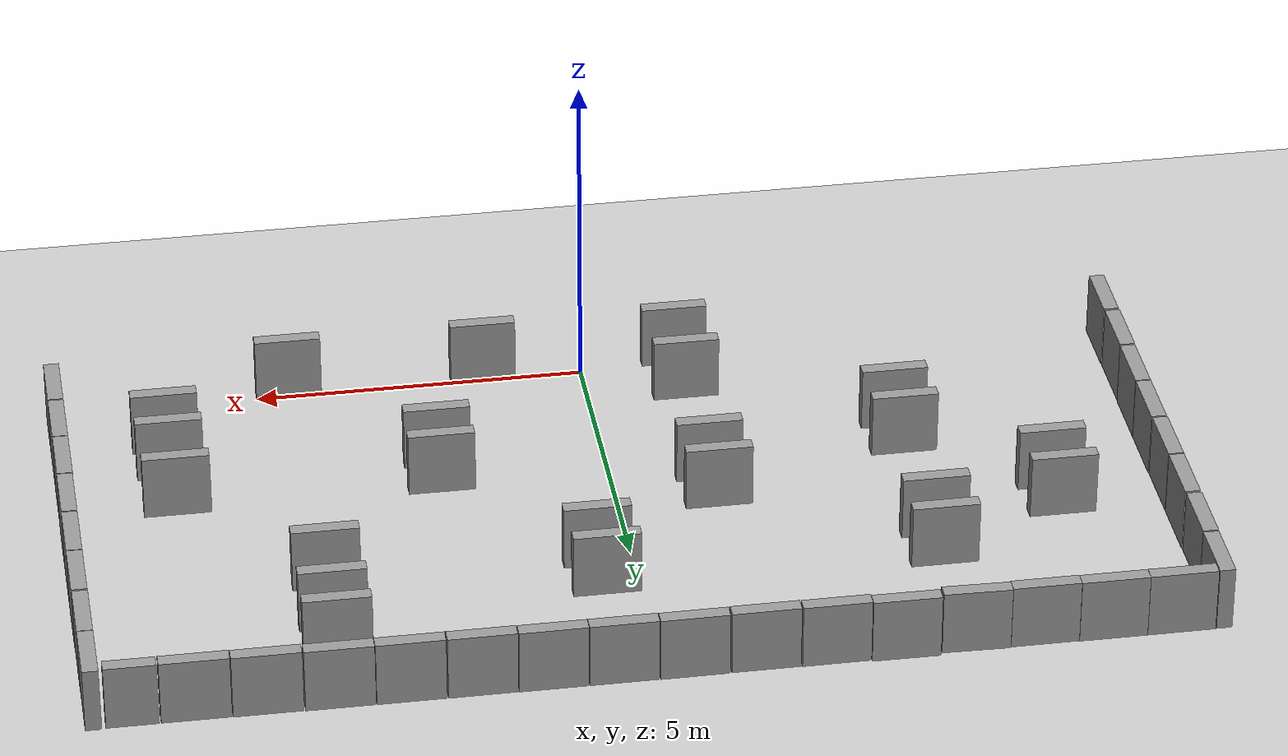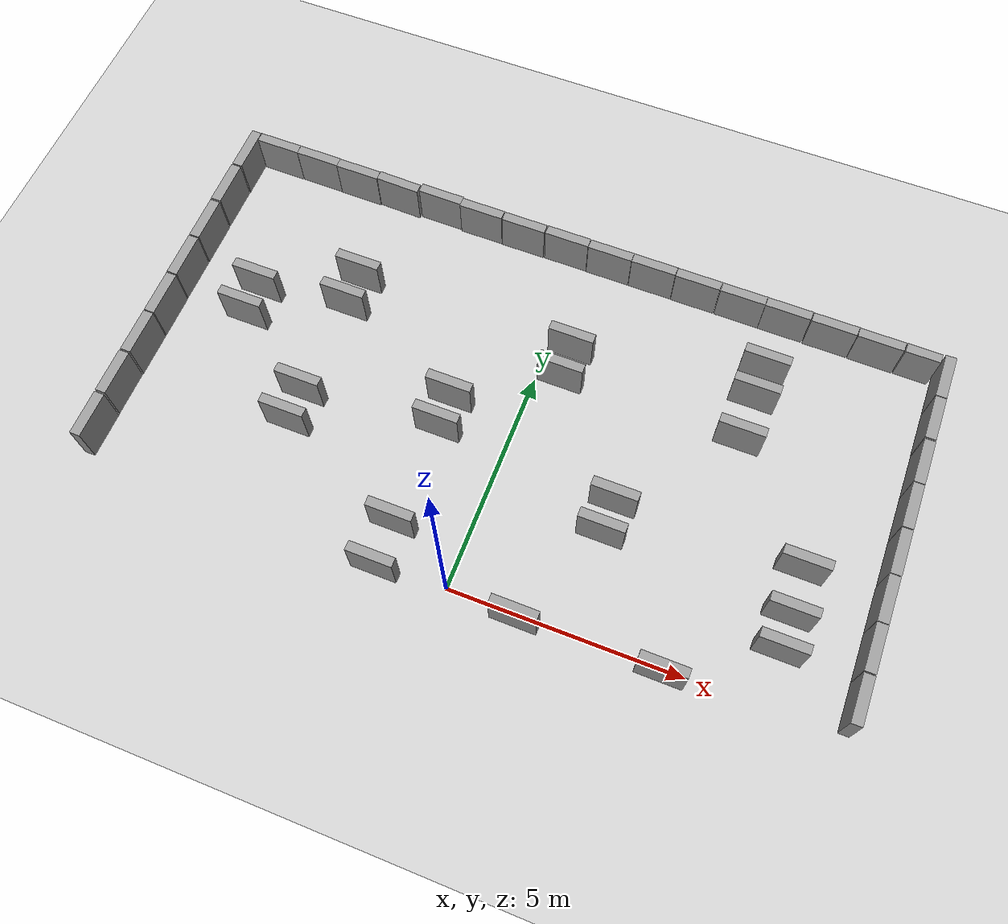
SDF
<sdf version="1.6">
 <world name="default">
  <model name="ground_plane">
   <static>1</static>
   <static>1</static>
   <link name="link">
    <collision name="collision">
     <geometry><plane><normal>0 0 1</normal><size>100 100</size></plane></geometry>
     <surface><friction><ode><mu>100</mu><mu2>50</mu2></ode></friction></surface>
    </collision>
    <visual name="visual">
     <cast_shadows>0</cast_shadows>
     <geometry><plane><normal>0 0 1</normal><size>100 100</size></plane></geometry>
     <material>
      <script><uri>file://media/materials/scripts/gazebo.material</uri><name>Gazebo/Grey</name></script>
     </material>
    </visual>
   </link>
  </model>
  <model name="unit_box_clone">
   <pose>-7.49845 8.12011 0.499999 1e-06 -2e-06 0.000156</pose>
   <link name="link">
    <inertial>
     <mass>1</mass>
     <inertia>
      <ixx>0.166667</ixx>
      <ixy>0</ixy>
      <ixz>0</ixz>
      <iyy>0.166667</iyy>
      <iyz>0</iyz>
      <izz>0.166667</izz>
     </inertia>
    </inertial>
    <collision name="collision"><geometry><box><size>1 0.210541 1</size></box></geometry></collision>
    <visual name="visual">
     <geometry><box><size>1 0.210541 1</size></box></geometry>
     <material>
      <script><name>Gazebo/Grey</name><uri>file://media/materials/scripts/gazebo.material</uri></script>
     </material>
    </visual>
   </link>
  </model>
  <model name="unit_box_clone_0">
   <pose>-6.4973 8.11973 0.500001 -8e-06 -0 -0.002301</pose>
   <link name="link">
    <inertial>
     <mass>1</mass>
     <inertia>
      <ixx>0.166667</ixx>
      <ixy>0</ixy>
      <ixz>0</ixz>
      <iyy>0.166667</iyy>
      <iyz>0</iyz>
      <izz>0.166667</izz>
     </inertia>
    </inertial>
    <collision name="collision"><geometry><box><size>1 0.210541 1</size></box></geometry></collision>
    <visual name="visual">
     <geometry><box><size>1 0.210541 1</size></box></geometry>
     <material>
      <script><name>Gazebo/Grey</name><uri>file://media/materials/scripts/gazebo.material</uri></script>
     </material>
    </visual>
   </link>
  </model>
  <model name="unit_box_clone_1">
   <pose>-5.49732 8.10848 0.499931 -0 -0 -0.002301</pose>
   <link name="link">
    <inertial>
     <mass>1</mass>
     <inertia>
      <ixx>0.166667</ixx>
      <ixy>0</ixy>
      <ixz>0</ixz>
      <iyy>0.166667</iyy>
      <iyz>0</iyz>
      <izz>0.166667</izz>
     </inertia>
    </inertial>
    <collision name="collision"><geometry><box><size>1 0.210541 1</size></box></geometry></collision>
    <visual name="visual">
     <geometry><box><size>1 0.210541 1</size></box></geometry>
     <material>
      <script><name>Gazebo/Grey</name><uri>file://media/materials/scripts/gazebo.material</uri></script>
     </material>
    </visual>
   </link>
  </model>
  <model name="unit_box_clone_2">
   <pose>-4.49485 8.11083 0.499999 1e-06 -2e-06 -0.026824</pose>
   <link name="link">
    <inertial>
     <mass>1</mass>
     <inertia>
      <ixx>0.166667</ixx>
      <ixy>0</ixy>
      <ixz>0</ixz>
      <iyy>0.166667</iyy>
      <iyz>0</iyz>
      <izz>0.166667</izz>
     </inertia>
    </inertial>
    <collision name="collision"><geometry><box><size>1 0.210541 1</size></box></geometry></collision>
    <visual name="visual">
     <geometry><box><size>1 0.210541 1</size></box></geometry>
     <material>
      <script><name>Gazebo/Grey</name><uri>file://media/materials/scripts/gazebo.material</uri></script>
     </material>
    </visual>
   </link>
  </model>
  <model name="unit_box_clone_3">
   <pose>-3.46835 8.14999 0.5 -0 -0 -0.007791</pose>
   <link name="link">
    <inertial>
     <mass>1</mass>
     <inertia>
      <ixx>0.166667</ixx>
      <ixy>0</ixy>
      <ixz>0</ixz>
      <iyy>0.166667</iyy>
      <iyz>0</iyz>
      <izz>0.166667</izz>
     </inertia>
    </inertial>
    <collision name="collision"><geometry><box><size>1 0.210541 1</size></box></geometry></collision>
    <visual name="visual">
     <geometry><box><size>1 0.210541 1</size></box></geometry>
     <material>
      <script><name>Gazebo/Grey</name><uri>file://media/materials/scripts/gazebo.material</uri></script>
     </material>
    </visual>
   </link>
  </model>
  <model name="unit_box_clone_4">
   <pose>-2.46316 8.1188 0.499999 1e-06 -2e-06 0.000156</pose>
   <link name="link">
    <inertial>
     <mass>1</mass>
     <inertia>
      <ixx>0.166667</ixx>
      <ixy>0</ixy>
      <ixz>0</ixz>
      <iyy>0.166667</iyy>
      <iyz>0</iyz>
      <izz>0.166667</izz>
     </inertia>
    </inertial>
    <collision name="collision"><geometry><box><size>1 0.210541 1</size></box></geometry></collision>
    <visual name="visual">
     <geometry><box><size>1 0.210541 1</size></box></geometry>
     <material>
      <script><name>Gazebo/Grey</name><uri>file://media/materials/scripts/gazebo.material</uri></script>
     </material>
    </visual>
   </link>
  </model>
  <model name="unit_box_clone_5">
   <pose>-1.44425 8.11214 0.499999 1e-06 -2e-06 0.000156</pose>
   <link name="link">
    <inertial>
     <mass>1</mass>
     <inertia>
      <ixx>0.166667</ixx>
      <ixy>0</ixy>
      <ixz>0</ixz>
      <iyy>0.166667</iyy>
      <iyz>0</iyz>
      <izz>0.166667</izz>
     </inertia>
    </inertial>
    <collision name="collision"><geometry><box><size>1 0.210541 1</size></box></geometry></collision>
    <visual name="visual">
     <geometry><box><size>1 0.210541 1</size></box></geometry>
     <material>
      <script><name>Gazebo/Grey</name><uri>file://media/materials/scripts/gazebo.material</uri></script>
     </material>
    </visual>
   </link>
  </model>
  <model name="unit_box_clone_6">
   <pose>-0.418685 8.11879 0.499999 1e-06 -2e-06 0.000156</pose>
   <link name="link">
    <inertial>
     <mass>1</mass>
     <inertia>
      <ixx>0.166667</ixx>
      <ixy>0</ixy>
      <ixz>0</ixz>
      <iyy>0.166667</iyy>
      <iyz>0</iyz>
      <izz>0.166667</izz>
     </inertia>
    </inertial>
    <collision name="collision"><geometry><box><size>1 0.210541 1</size></box></geometry></collision>
    <visual name="visual">
     <geometry><box><size>1 0.210541 1</size></box></geometry>
     <material>
      <script><name>Gazebo/Grey</name><uri>file://media/materials/scripts/gazebo.material</uri></script>
     </material>
    </visual>
   </link>
  </model>
  <model name="unit_box_clone_7">
   <pose>0.592834 8.11166 0.499999 1e-06 -2e-06 0.000156</pose>
   <link name="link">
    <inertial>
     <mass>1</mass>
     <inertia>
      <ixx>0.166667</ixx>
      <ixy>0</ixy>
      <ixz>0</ixz>
      <iyy>0.166667</iyy>
      <iyz>0</iyz>
      <izz>0.166667</izz>
     </inertia>
    </inertial>
    <collision name="collision"><geometry><box><size>1 0.210541 1</size></box></geometry></collision>
    <visual name="visual">
     <geometry><box><size>1 0.210541 1</size></box></geometry>
     <material>
      <script><name>Gazebo/Grey</name><uri>file://media/materials/scripts/gazebo.material</uri></script>
     </material>
    </visual>
   </link>
  </model>
  <model name="unit_box_clone_8">
   <pose>1.60043 8.11017 0.499999 1e-06 -2e-06 0.000156</pose>
   <link name="link">
    <inertial>
     <mass>1</mass>
     <inertia>
      <ixx>0.166667</ixx>
      <ixy>0</ixy>
      <ixz>0</ixz>
      <iyy>0.166667</iyy>
      <iyz>0</iyz>
      <izz>0.166667</izz>
     </inertia>
    </inertial>
    <collision name="collision"><geometry><box><size>1 0.210541 1</size></box></geometry></collision>
    <visual name="visual">
     <geometry><box><size>1 0.210541 1</size></box></geometry>
     <material>
      <script><name>Gazebo/Grey</name><uri>file://media/materials/scripts/gazebo.material</uri></script>
     </material>
    </visual>
   </link>
  </model>
  <model name="unit_box_clone_9">
   <pose>2.60987 8.10298 0.499999 1e-06 -2e-06 0.000156</pose>
   <link name="link">
    <inertial>
     <mass>1</mass>
     <inertia>
      <ixx>0.166667</ixx>
      <ixy>0</ixy>
      <ixz>0</ixz>
      <iyy>0.166667</iyy>
      <iyz>0</iyz>
      <izz>0.166667</izz>
     </inertia>
    </inertial>
    <collision name="collision"><geometry><box><size>1 0.210541 1</size></box></geometry></collision>
    <visual name="visual">
     <geometry><box><size>1 0.210541 1</size></box></geometry>
     <material>
      <script><name>Gazebo/Grey</name><uri>file://media/materials/scripts/gazebo.material</uri></script>
     </material>
    </visual>
   </link>
  </model>
  <model name="unit_box_clone_10">
   <pose>3.62649 8.09939 0.499999 1e-06 -2e-06 0.000156</pose>
   <link name="link">
    <inertial>
     <mass>1</mass>
     <inertia>
      <ixx>0.166667</ixx>
      <ixy>0</ixy>
      <ixz>0</ixz>
      <iyy>0.166667</iyy>
      <iyz>0</iyz>
      <izz>0.166667</izz>
     </inertia>
    </inertial>
    <collision name="collision"><geometry><box><size>1 0.210541 1</size></box></geometry></collision>
    <visual name="visual">
     <geometry><box><size>1 0.210541 1</size></box></geometry>
     <material>
      <script><name>Gazebo/Grey</name><uri>file://media/materials/scripts/gazebo.material</uri></script>
     </material>
    </visual>
   </link>
  </model>
  <model name="unit_box_clone_11">
   <pose>4.63311 8.09523 0.5 0 -0 -0.003214</pose>
   <link name="link">
    <inertial>
     <mass>1</mass>
     <inertia>
      <ixx>0.166667</ixx>
      <ixy>0</ixy>
      <ixz>0</ixz>
      <iyy>0.166667</iyy>
      <iyz>0</iyz>
      <izz>0.166667</izz>
     </inertia>
    </inertial>
    <collision name="collision"><geometry><box><size>1 0.210541 1</size></box></geometry></collision>
    <visual name="visual">
     <geometry><box><size>1 0.210541 1</size></box></geometry>
     <material>
      <script><name>Gazebo/Grey</name><uri>file://media/materials/scripts/gazebo.material</uri></script>
     </material>
    </visual>
   </link>
  </model>
  <model name="unit_box_0_clone_0">
   <pose>8.11522 6.68459 0.5 0 0 -0.00024</pose>
   <link name="link">
    <inertial>
     <mass>1</mass>
     <inertia>
      <ixx>0.166667</ixx>
      <ixy>0</ixy>
      <ixz>0</ixz>
      <iyy>0.166667</iyy>
      <iyz>0</iyz>
      <izz>0.166667</izz>
     </inertia>
    </inertial>
    <collision name="collision"><geometry><box><size>0.230819 1 1</size></box></geometry></collision>
    <visual name="visual">
     <geometry><box><size>0.230819 1 1</size></box></geometry>
     <material>
      <script><name>Gazebo/Grey</name><uri>file://media/materials/scripts/gazebo.material</uri></script>
     </material>
    </visual>
   </link>
  </model>
  <model name="unit_box_0_clone_1">
   <pose>8.11915 5.6517 0.5 1e-06 1e-06 0.000156</pose>
   <link name="link">
    <inertial>
     <mass>1</mass>
     <inertia>
      <ixx>0.166667</ixx>
      <ixy>0</ixy>
      <ixz>0</ixz>
      <iyy>0.166667</iyy>
      <iyz>0</iyz>
      <izz>0.166667</izz>
     </inertia>
    </inertial>
    <collision name="collision"><geometry><box><size>0.230819 1 1</size></box></geometry></collision>
    <visual name="visual">
     <geometry><box><size>0.230819 1 1</size></box></geometry>
     <material>
      <script><name>Gazebo/Grey</name><uri>file://media/materials/scripts/gazebo.material</uri></script>
     </material>
    </visual>
   </link>
  </model>
  <model name="unit_box_0_clone_2">
   <pose>8.11914 4.64016 0.5 1e-06 1e-06 0.00025</pose>
   <link name="link">
    <inertial>
     <mass>1</mass>
     <inertia>
      <ixx>0.166667</ixx>
      <ixy>0</ixy>
      <ixz>0</ixz>
      <iyy>0.166667</iyy>
      <iyz>0</iyz>
      <izz>0.166667</izz>
     </inertia>
    </inertial>
    <collision name="collision"><geometry><box><size>0.230819 1 1</size></box></geometry></collision>
    <visual name="visual">
     <geometry><box><size>0.230819 1 1</size></box></geometry>
     <material>
      <script><name>Gazebo/Grey</name><uri>file://media/materials/scripts/gazebo.material</uri></script>
     </material>
    </visual>
   </link>
  </model>
  <model name="unit_box_0_clone_3">
   <pose>8.11914 3.62227 0.5 1e-06 1e-06 0.000231</pose>
   <link name="link">
    <inertial>
     <mass>1</mass>
     <inertia>
      <ixx>0.166667</ixx>
      <ixy>0</ixy>
      <ixz>0</ixz>
      <iyy>0.166667</iyy>
      <iyz>0</iyz>
      <izz>0.166667</izz>
     </inertia>
    </inertial>
    <collision name="collision"><geometry><box><size>0.230819 1 1</size></box></geometry></collision>
    <visual name="visual">
     <geometry><box><size>0.230819 1 1</size></box></geometry>
     <material>
      <script><name>Gazebo/Grey</name><uri>file://media/materials/scripts/gazebo.material</uri></script>
     </material>
    </visual>
   </link>
  </model>
  <model name="unit_box_0_clone_4">
   <pose>8.11332 2.61062 0.5 1e-06 1e-06 -0.001006</pose>
   <link name="link">
    <inertial>
     <mass>1</mass>
     <inertia>
      <ixx>0.166667</ixx>
      <ixy>0</ixy>
      <ixz>0</ixz>
      <iyy>0.166667</iyy>
      <iyz>0</iyz>
      <izz>0.166667</izz>
     </inertia>
    </inertial>
    <collision name="collision"><geometry><box><size>0.230819 1 1</size></box></geometry></collision>
    <visual name="visual">
     <geometry><box><size>0.230819 1 1</size></box></geometry>
     <material>
      <script><name>Gazebo/Grey</name><uri>file://media/materials/scripts/gazebo.material</uri></script>
     </material>
    </visual>
   </link>
  </model>
  <model name="unit_box_0_clone_5">
   <pose>8.11277 1.59919 0.5 1e-06 1e-06 0.000231</pose>
   <link name="link">
    <inertial>
     <mass>1</mass>
     <inertia>
      <ixx>0.166667</ixx>
      <ixy>0</ixy>
      <ixz>0</ixz>
      <iyy>0.166667</iyy>
      <iyz>0</iyz>
      <izz>0.166667</izz>
     </inertia>
    </inertial>
    <collision name="collision"><geometry><box><size>0.230819 1 1</size></box></geometry></collision>
    <visual name="visual">
     <geometry><box><size>0.230819 1 1</size></box></geometry>
     <material>
      <script><name>Gazebo/Grey</name><uri>file://media/materials/scripts/gazebo.material</uri></script>
     </material>
    </visual>
   </link>
  </model>
  <model name="unit_box_0_clone_6">
   <pose>8.11277 0.574937 0.5 1e-06 1e-06 0.000231</pose>
   <link name="link">
    <inertial>
     <mass>1</mass>
     <inertia>
      <ixx>0.166667</ixx>
      <ixy>0</ixy>
      <ixz>0</ixz>
      <iyy>0.166667</iyy>
      <iyz>0</iyz>
      <izz>0.166667</izz>
     </inertia>
    </inertial>
    <collision name="collision"><geometry><box><size>0.230819 1 1</size></box></geometry></collision>
    <visual name="visual">
     <geometry><box><size>0.230819 1 1</size></box></geometry>
     <material>
      <script><name>Gazebo/Grey</name><uri>file://media/materials/scripts/gazebo.material</uri></script>
     </material>
    </visual>
   </link>
  </model>
  <model name="unit_box_0_clone_4_clone">
   <pose>-8.12647 7.71769 0.5 1e-06 1e-06 0.000231</pose>
   <link name="link">
    <inertial>
     <mass>1</mass>
     <inertia>
      <ixx>0.166667</ixx>
      <ixy>0</ixy>
      <ixz>0</ixz>
      <iyy>0.166667</iyy>
      <iyz>0</iyz>
      <izz>0.166667</izz>
     </inertia>
    </inertial>
    <collision name="collision"><geometry><box><size>0.230819 1 1</size></box></geometry></collision>
    <visual name="visual">
     <geometry><box><size>0.230819 1 1</size></box></geometry>
     <material>
      <script><name>Gazebo/Grey</name><uri>file://media/materials/scripts/gazebo.material</uri></script>
     </material>
    </visual>
   </link>
  </model>
  <model name="unit_box_0_clone_4_clone_0">
   <pose>-8.13281 6.68715 0.5 1e-06 1e-06 0.000231</pose>
   <link name="link">
    <inertial>
     <mass>1</mass>
     <inertia>
      <ixx>0.166667</ixx>
      <ixy>0</ixy>
      <ixz>0</ixz>
      <iyy>0.166667</iyy>
      <iyz>0</iyz>
      <izz>0.166667</izz>
     </inertia>
    </inertial>
    <collision name="collision"><geometry><box><size>0.230819 1 1</size></box></geometry></collision>
    <visual name="visual">
     <geometry><box><size>0.230819 1 1</size></box></geometry>
     <material>
      <script><name>Gazebo/Grey</name><uri>file://media/materials/scripts/gazebo.material</uri></script>
     </material>
    </visual>
   </link>
  </model>
  <model name="unit_box_0_clone_4_clone_1">
   <pose>-8.12606 5.64722 0.5 1e-06 1e-06 0.000231</pose>
   <link name="link">
    <inertial>
     <mass>1</mass>
     <inertia>
      <ixx>0.166667</ixx>
      <ixy>0</ixy>
      <ixz>0</ixz>
      <iyy>0.166667</iyy>
      <iyz>0</iyz>
      <izz>0.166667</izz>
     </inertia>
    </inertial>
    <collision name="collision"><geometry><box><size>0.230819 1 1</size></box></geometry></collision>
    <visual name="visual">
     <geometry><box><size>0.230819 1 1</size></box></geometry>
     <material>
      <script><name>Gazebo/Grey</name><uri>file://media/materials/scripts/gazebo.material</uri></script>
     </material>
    </visual>
   </link>
  </model>
  <model name="unit_box_0_clone_4_clone_2">
   <pose>-8.12607 4.6208 0.5 1e-06 1e-06 0.000231</pose>
   <link name="link">
    <inertial>
     <mass>1</mass>
     <inertia>
      <ixx>0.166667</ixx>
      <ixy>0</ixy>
      <ixz>0</ixz>
      <iyy>0.166667</iyy>
      <iyz>0</iyz>
      <izz>0.166667</izz>
     </inertia>
    </inertial>
    <collision name="collision"><geometry><box><size>0.230819 1 1</size></box></geometry></collision>
    <visual name="visual">
     <geometry><box><size>0.230819 1 1</size></box></geometry>
     <material>
      <script><name>Gazebo/Grey</name><uri>file://media/materials/scripts/gazebo.material</uri></script>
     </material>
    </visual>
   </link>
  </model>
  <model name="unit_box_0_clone_4_clone_3">
   <pose>-8.11932 3.59438 0.5 1e-06 1e-06 0.000231</pose>
   <link name="link">
    <inertial>
     <mass>1</mass>
     <inertia>
      <ixx>0.166667</ixx>
      <ixy>0</ixy>
      <ixz>0</ixz>
      <iyy>0.166667</iyy>
      <iyz>0</iyz>
      <izz>0.166667</izz>
     </inertia>
    </inertial>
    <collision name="collision"><geometry><box><size>0.230819 1 1</size></box></geometry></collision>
    <visual name="visual">
     <geometry><box><size>0.230819 1 1</size></box></geometry>
     <material>
      <script><name>Gazebo/Grey</name><uri>file://media/materials/scripts/gazebo.material</uri></script>
     </material>
    </visual>
   </link>
  </model>
  <model name="unit_box_0_clone_4_clone_4">
   <pose>-8.11932 2.57472 0.5 1e-06 1e-06 0.000231</pose>
   <link name="link">
    <inertial>
     <mass>1</mass>
     <inertia>
      <ixx>0.166667</ixx>
      <ixy>0</ixy>
      <ixz>0</ixz>
      <iyy>0.166667</iyy>
      <iyz>0</iyz>
      <izz>0.166667</izz>
     </inertia>
    </inertial>
    <collision name="collision"><geometry><box><size>0.230819 1 1</size></box></geometry></collision>
    <visual name="visual">
     <geometry><box><size>0.230819 1 1</size></box></geometry>
     <material>
      <script><name>Gazebo/Grey</name><uri>file://media/materials/scripts/gazebo.material</uri></script>
     </material>
    </visual>
   </link>
  </model>
  <model name="unit_box_0_clone_4_clone_5">
   <pose>-8.12608 1.54156 0.5 1e-06 1e-06 0.000231</pose>
   <link name="link">
    <inertial>
     <mass>1</mass>
     <inertia>
      <ixx>0.166667</ixx>
      <ixy>0</ixy>
      <ixz>0</ixz>
      <iyy>0.166667</iyy>
      <iyz>0</iyz>
      <izz>0.166667</izz>
     </inertia>
    </inertial>
    <collision name="collision"><geometry><box><size>0.230819 1 1</size></box></geometry></collision>
    <visual name="visual">
     <geometry><box><size>0.230819 1 1</size></box></geometry>
     <material>
      <script><name>Gazebo/Grey</name><uri>file://media/materials/scripts/gazebo.material</uri></script>
     </material>
    </visual>
   </link>
  </model>
  <model name="unit_box_0_clone_4_clone_6">
   <pose>-8.11933 0.501629 0.5 1e-06 1e-06 0.000231</pose>
   <link name="link">
    <inertial>
     <mass>1</mass>
     <inertia>
      <ixx>0.166667</ixx>
      <ixy>0</ixy>
      <ixz>0</ixz>
      <iyy>0.166667</iyy>
      <iyz>0</iyz>
      <izz>0.166667</izz>
     </inertia>
    </inertial>
    <collision name="collision"><geometry><box><size>0.230819 1 1</size></box></geometry></collision>
    <visual name="visual">
     <geometry><box><size>0.230819 1 1</size></box></geometry>
     <material>
      <script><name>Gazebo/Grey</name><uri>file://media/materials/scripts/gazebo.material</uri></script>
     </material>
    </visual>
   </link>
  </model>
  <model name="unit_box_0_clone_0_clone">
   <pose>8.11438 7.69322 0.5 1e-06 1e-06 0.000138</pose>
   <link name="link">
    <inertial>
     <mass>1</mass>
     <inertia>
      <ixx>0.166667</ixx>
      <ixy>0</ixy>
      <ixz>0</ixz>
      <iyy>0.166667</iyy>
      <iyz>0</iyz>
      <izz>0.166667</izz>
     </inertia>
    </inertial>
    <collision name="collision"><geometry><box><size>0.230819 1 1</size></box></geometry></collision>
    <visual name="visual">
     <geometry><box><size>0.230819 1 1</size></box></geometry>
     <material>
      <script><name>Gazebo/Grey</name><uri>file://media/materials/scripts/gazebo.material</uri></script>
     </material>
    </visual>
   </link>
  </model>
  <model name="unit_box_clone_11_clone">
   <pose>5.65439 8.08359 0.5 0 0 -0.00299</pose>
   <link name="link">
    <inertial>
     <mass>1</mass>
     <inertia>
      <ixx>0.166667</ixx>
      <ixy>0</ixy>
      <ixz>0</ixz>
      <iyy>0.166667</iyy>
      <iyz>0</iyz>
      <izz>0.166667</izz>
     </inertia>
    </inertial>
    <collision name="collision"><geometry><box><size>1 0.210541 1</size></box></geometry></collision>
    <visual name="visual">
     <geometry><box><size>1 0.210541 1</size></box></geometry>
     <material>
      <script><name>Gazebo/Grey</name><uri>file://media/materials/scripts/gazebo.material</uri></script>
     </material>
    </visual>
   </link>
  </model>
  <model name="unit_box_clone_11_clone_0">
   <pose>6.6644 8.07345 0.5 -0 -0 -0.003213</pose>
   <link name="link">
    <inertial>
     <mass>1</mass>
     <inertia>
      <ixx>0.166667</ixx>
      <ixy>0</ixy>
      <ixz>0</ixz>
      <iyy>0.166667</iyy>
      <iyz>0</iyz>
      <izz>0.166667</izz>
     </inertia>
    </inertial>
    <collision name="collision"><geometry><box><size>1 0.210541 1</size></box></geometry></collision>
    <visual name="visual">
     <geometry><box><size>1 0.210541 1</size></box></geometry>
     <material>
      <script><name>Gazebo/Grey</name><uri>file://media/materials/scripts/gazebo.material</uri></script>
     </material>
    </visual>
   </link>
  </model>
  <model name="unit_box_clone_11_clone_1_clone">
   <pose>7.56437 8.07324 0.499997 1e-06 -8e-06 -0.004168</pose>
   <link name="link">
    <inertial>
     <mass>1</mass>
     <inertia>
      <ixx>0.166667</ixx>
      <ixy>0</ixy>
      <ixz>0</ixz>
      <iyy>0.166667</iyy>
      <iyz>0</iyz>
      <izz>0.166667</izz>
     </inertia>
    </inertial>
    <collision name="collision"><geometry><box><size>0.750223 0.210541 1</size></box></geometry></collision>
    <visual name="visual">
     <geometry><box><size>0.750223 0.210541 1</size></box></geometry>
     <material>
      <script><name>Gazebo/Grey</name><uri>file://media/materials/scripts/gazebo.material</uri></script>
     </material>
    </visual>
   </link>
  </model>
  <model name="unit_box_clone_1_clone">
   <pose>-6.49421 4.87624 0.499999 -1e-06 -2e-06 -0.002297</pose>
   <link name="link">
    <inertial>
     <mass>1</mass>
     <inertia>
      <ixx>0.166667</ixx>
      <ixy>0</ixy>
      <ixz>0</ixz>
      <iyy>0.166667</iyy>
      <iyz>0</iyz>
      <izz>0.166667</izz>
     </inertia>
    </inertial>
    <collision name="collision"><geometry><box><size>1 0.210541 1</size></box></geometry></collision>
    <visual name="visual">
     <geometry><box><size>1 0.210541 1</size></box></geometry>
     <material>
      <script><name>Gazebo/Grey</name><uri>file://media/materials/scripts/gazebo.material</uri></script>
     </material>
    </visual>
   </link>
  </model>
  <model name="unit_box_clone_1_clone_0">
   <pose>-6.47473 4.13572 0.5 0 -0 -0.002265</pose>
   <link name="link">
    <inertial>
     <mass>1</mass>
     <inertia>
      <ixx>0.166667</ixx>
      <ixy>0</ixy>
      <ixz>0</ixz>
      <iyy>0.166667</iyy>
      <iyz>0</iyz>
      <izz>0.166667</izz>
     </inertia>
    </inertial>
    <collision name="collision"><geometry><box><size>1 0.210541 1</size></box></geometry></collision>
    <visual name="visual">
     <geometry><box><size>1 0.210541 1</size></box></geometry>
     <material>
      <script><name>Gazebo/Grey</name><uri>file://media/materials/scripts/gazebo.material</uri></script>
     </material>
    </visual>
   </link>
  </model>
  <model name="unit_box_clone_1_clone_1">
   <pose>-4.49747 5.89935 0.499999 -1e-06 2e-06 -0.002208</pose>
   <link name="link">
    <inertial>
     <mass>1</mass>
     <inertia>
      <ixx>0.166667</ixx>
      <ixy>0</ixy>
      <ixz>0</ixz>
      <iyy>0.166667</iyy>
      <iyz>0</iyz>
      <izz>0.166667</izz>
     </inertia>
    </inertial>
    <collision name="collision"><geometry><box><size>1 0.210541 1</size></box></geometry></collision>
    <visual name="visual">
     <geometry><box><size>1 0.210541 1</size></box></geometry>
     <material>
      <script><name>Gazebo/Grey</name><uri>file://media/materials/scripts/gazebo.material</uri></script>
     </material>
    </visual>
   </link>
  </model>
  <model name="unit_box_clone_1_clone_2">
   <pose>-4.50783 5.1334 0.5 0 0 -0.002271</pose>
   <link name="link">
    <inertial>
     <mass>1</mass>
     <inertia>
      <ixx>0.166667</ixx>
      <ixy>0</ixy>
      <ixz>0</ixz>
      <iyy>0.166667</iyy>
      <iyz>0</iyz>
      <izz>0.166667</izz>
     </inertia>
    </inertial>
    <collision name="collision"><geometry><box><size>1 0.210541 1</size></box></geometry></collision>
    <visual name="visual">
     <geometry><box><size>1 0.210541 1</size></box></geometry>
     <material>
      <script><name>Gazebo/Grey</name><uri>file://media/materials/scripts/gazebo.material</uri></script>
     </material>
    </visual>
   </link>
  </model>
  <model name="unit_box_clone_1_clone_3">
   <pose>-4.49749 2.87573 0.499999 1e-06 2e-06 -0.002334</pose>
   <link name="link">
    <inertial>
     <mass>1</mass>
     <inertia>
      <ixx>0.166667</ixx>
      <ixy>0</ixy>
      <ixz>0</ixz>
      <iyy>0.166667</iyy>
      <iyz>0</iyz>
      <izz>0.166667</izz>
     </inertia>
    </inertial>
    <collision name="collision"><geometry><box><size>1 0.210541 1</size></box></geometry></collision>
    <visual name="visual">
     <geometry><box><size>1 0.210541 1</size></box></geometry>
     <material>
      <script><name>Gazebo/Grey</name><uri>file://media/materials/scripts/gazebo.material</uri></script>
     </material>
    </visual>
   </link>
  </model>
  <model name="unit_box_clone_1_clone_4">
   <pose>-4.48713 2.11971 0.5 -0 -0 -0.002268</pose>
   <link name="link">
    <inertial>
     <mass>1</mass>
     <inertia>
      <ixx>0.166667</ixx>
      <ixy>0</ixy>
      <ixz>0</ixz>
      <iyy>0.166667</iyy>
      <iyz>0</iyz>
      <izz>0.166667</izz>
     </inertia>
    </inertial>
    <collision name="collision"><geometry><box><size>1 0.210541 1</size></box></geometry></collision>
    <visual name="visual">
     <geometry><box><size>1 0.210541 1</size></box></geometry>
     <material>
      <script><name>Gazebo/Grey</name><uri>file://media/materials/scripts/gazebo.material</uri></script>
     </material>
    </visual>
   </link>
  </model>
  <model name="unit_box_clone_1_clone_5">
   <pose>-1.49416 3.87986 0.5 0 0 -0.002214</pose>
   <link name="link">
    <inertial>
     <mass>1</mass>
     <inertia>
      <ixx>0.166667</ixx>
      <ixy>0</ixy>
      <ixz>0</ixz>
      <iyy>0.166667</iyy>
      <iyz>0</iyz>
      <izz>0.166667</izz>
     </inertia>
    </inertial>
    <collision name="collision"><geometry><box><size>1 0.210541 1</size></box></geometry></collision>
    <visual name="visual">
     <geometry><box><size>1 0.210541 1</size></box></geometry>
     <material>
      <script><name>Gazebo/Grey</name><uri>file://media/materials/scripts/gazebo.material</uri></script>
     </material>
    </visual>
   </link>
  </model>
  <model name="unit_box_clone_1_clone_6">
   <pose>-1.47345 3.1346 0.5 0 0 -0.002295</pose>
   <link name="link">
    <inertial>
     <mass>1</mass>
     <inertia>
      <ixx>0.166667</ixx>
      <ixy>0</ixy>
      <ixz>0</ixz>
      <iyy>0.166667</iyy>
      <iyz>0</iyz>
      <izz>0.166667</izz>
     </inertia>
    </inertial>
    <collision name="collision"><geometry><box><size>1 0.210541 1</size></box></geometry></collision>
    <visual name="visual">
     <geometry><box><size>1 0.210541 1</size></box></geometry>
     <material>
      <script><name>Gazebo/Grey</name><uri>file://media/materials/scripts/gazebo.material</uri></script>
     </material>
    </visual>
   </link>
  </model>
  <model name="unit_box_clone_1_clone_7">
   <pose>0.494256 5.88935 0.499999 1e-06 -2e-06 -0.002236</pose>
   <link name="link">
    <inertial>
     <mass>1</mass>
     <inertia>
      <ixx>0.166667</ixx>
      <ixy>0</ixy>
      <ixz>0</ixz>
      <iyy>0.166667</iyy>
      <iyz>0</iyz>
      <izz>0.166667</izz>
     </inertia>
    </inertial>
    <collision name="collision"><geometry><box><size>1 0.210541 1</size></box></geometry></collision>
    <visual name="visual">
     <geometry><box><size>1 0.210541 1</size></box></geometry>
     <material>
      <script><name>Gazebo/Grey</name><uri>file://media/materials/scripts/gazebo.material</uri></script>
     </material>
    </visual>
   </link>
  </model>
  <model name="unit_box_clone_1_clone_8">
   <pose>0.525324 5.14334 0.499999 -1e-06 -2e-06 -0.00235</pose>
   <link name="link">
    <inertial>
     <mass>1</mass>
     <inertia>
      <ixx>0.166667</ixx>
      <ixy>0</ixy>
      <ixz>0</ixz>
      <iyy>0.166667</iyy>
      <iyz>0</iyz>
      <izz>0.166667</izz>
     </inertia>
    </inertial>
    <collision name="collision"><geometry><box><size>1 0.210541 1</size></box></geometry></collision>
    <visual name="visual">
     <geometry><box><size>1 0.210541 1</size></box></geometry>
     <material>
      <script><name>Gazebo/Grey</name><uri>file://media/materials/scripts/gazebo.material</uri></script>
     </material>
    </visual>
   </link>
  </model>
  <model name="unit_box_clone_1_clone_9">
   <pose>2.52282 2.85715 0.499999 1e-06 2e-06 -0.002334</pose>
   <link name="link">
    <inertial>
     <mass>1</mass>
     <inertia>
      <ixx>0.166667</ixx>
      <ixy>0</ixy>
      <ixz>0</ixz>
      <iyy>0.166667</iyy>
      <iyz>0</iyz>
      <izz>0.166667</izz>
     </inertia>
    </inertial>
    <collision name="collision"><geometry><box><size>1 0.210541 1</size></box></geometry></collision>
    <visual name="visual">
     <geometry><box><size>1 0.210541 1</size></box></geometry>
     <material>
      <script><name>Gazebo/Grey</name><uri>file://media/materials/scripts/gazebo.material</uri></script>
     </material>
    </visual>
   </link>
  </model>
  <model name="unit_box_clone_1_clone_10">
   <pose>2.50291 2.14053 0.5 0 -0 -0.002289</pose>
   <link name="link">
    <inertial>
     <mass>1</mass>
     <inertia>
      <ixx>0.166667</ixx>
      <ixy>0</ixy>
      <ixz>0</ixz>
      <iyy>0.166667</iyy>
      <iyz>0</iyz>
      <izz>0.166667</izz>
     </inertia>
    </inertial>
    <collision name="collision"><geometry><box><size>1 0.210541 1</size></box></geometry></collision>
    <visual name="visual">
     <geometry><box><size>1 0.210541 1</size></box></geometry>
     <material>
      <script><name>Gazebo/Grey</name><uri>file://media/materials/scripts/gazebo.material</uri></script>
     </material>
    </visual>
   </link>
  </model>
  <model name="unit_box_clone_1_clone_11">
   <pose>1.50808 -0.12732 0.499999 1e-06 -2e-06 -0.002245</pose>
   <link name="link">
    <inertial>
     <mass>1</mass>
     <inertia>
      <ixx>0.166667</ixx>
      <ixy>0</ixy>
      <ixz>0</ixz>
      <iyy>0.166667</iyy>
      <iyz>0</iyz>
      <izz>0.166667</izz>
     </inertia>
    </inertial>
    <collision name="collision"><geometry><box><size>1 0.210541 1</size></box></geometry></collision>
    <visual name="visual">
     <geometry><box><size>1 0.210541 1</size></box></geometry>
     <material>
      <script><name>Gazebo/Grey</name><uri>file://media/materials/scripts/gazebo.material</uri></script>
     </material>
    </visual>
   </link>
  </model>
  <model name="unit_box_clone_1_clone_13">
   <pose>-1.50124 0.842898 0.499999 -1e-06 2e-06 -0.002244</pose>
   <link name="link">
    <inertial>
     <mass>1</mass>
     <inertia>
      <ixx>0.166667</ixx>
      <ixy>0</ixy>
      <ixz>0</ixz>
      <iyy>0.166667</iyy>
      <iyz>0</iyz>
      <izz>0.166667</izz>
     </inertia>
    </inertial>
    <collision name="collision"><geometry><box><size>1 0.210541 1</size></box></geometry></collision>
    <visual name="visual">
     <geometry><box><size>1 0.210541 1</size></box></geometry>
     <material>
      <script><name>Gazebo/Grey</name><uri>file://media/materials/scripts/gazebo.material</uri></script>
     </material>
    </visual>
   </link>
  </model>
  <model name="unit_box_clone_1_clone_14">
   <pose>-1.4758 -0.148912 0.5 0 0 -0.002308</pose>
   <link name="link">
    <inertial>
     <mass>1</mass>
     <inertia>
      <ixx>0.166667</ixx>
      <ixy>0</ixy>
      <ixz>0</ixz>
      <iyy>0.166667</iyy>
      <iyz>0</iyz>
      <izz>0.166667</izz>
     </inertia>
    </inertial>
    <collision name="collision"><geometry><box><size>1 0.210541 1</size></box></geometry></collision>
    <visual name="visual">
     <geometry><box><size>1 0.210541 1</size></box></geometry>
     <material>
      <script><name>Gazebo/Grey</name><uri>file://media/materials/scripts/gazebo.material</uri></script>
     </material>
    </visual>
   </link>
  </model>
  <model name="unit_box_clone_1_clone_27">
   <pose>4.51174 -0.119938 0.5 0 -0 -0.002282</pose>
   <link name="link">
    <inertial>
     <mass>1</mass>
     <inertia>
      <ixx>0.166667</ixx>
      <ixy>0</ixy>
      <ixz>0</ixz>
      <iyy>0.166667</iyy>
      <iyz>0</iyz>
      <izz>0.166667</izz>
     </inertia>
    </inertial>
    <collision name="collision"><geometry><box><size>1 0.210541 1</size></box></geometry></collision>
    <visual name="visual">
     <geometry><box><size>1 0.210541 1</size></box></geometry>
     <material>
      <script><name>Gazebo/Grey</name><uri>file://media/materials/scripts/gazebo.material</uri></script>
     </material>
    </visual>
   </link>
  </model>
  <model name="unit_box_clone_1_clone_36">
   <pose>6.50575 1.11923 0.5 -0 -0 -0.002348</pose>
   <link name="link">
    <inertial>
     <mass>1</mass>
     <inertia>
      <ixx>0.166667</ixx>
      <ixy>0</ixy>
      <ixz>0</ixz>
      <iyy>0.166667</iyy>
      <iyz>0</iyz>
      <izz>0.166667</izz>
     </inertia>
    </inertial>
    <collision name="collision"><geometry><box><size>1 0.210541 1</size></box></geometry></collision>
    <visual name="visual">
     <geometry><box><size>1 0.210541 1</size></box></geometry>
     <material>
      <script><name>Gazebo/Grey</name><uri>file://media/materials/scripts/gazebo.material</uri></script>
     </material>
    </visual>
   </link>
  </model>
  <model name="unit_box_clone_1_clone_37">
   <pose>6.49525 1.86504 0.499999 1e-06 -2e-06 -0.002246</pose>
   <link name="link">
    <inertial>
     <mass>1</mass>
     <inertia>
      <ixx>0.166667</ixx>
      <ixy>0</ixy>
      <ixz>0</ixz>
      <iyy>0.166667</iyy>
      <iyz>0</iyz>
      <izz>0.166667</izz>
     </inertia>
    </inertial>
    <collision name="collision"><geometry><box><size>1 0.210541 1</size></box></geometry></collision>
    <visual name="visual">
     <geometry><box><size>1 0.210541 1</size></box></geometry>
     <material>
      <script><name>Gazebo/Grey</name><uri>file://media/materials/scripts/gazebo.material</uri></script>
     </material>
    </visual>
   </link>
  </model>
  <model name="unit_box_clone_1_clone_38">
   <pose>6.47425 2.863 0.5 0 0 -0.002317</pose>
   <link name="link">
    <inertial>
     <mass>1</mass>
     <inertia>
      <ixx>0.166667</ixx>
      <ixy>0</ixy>
      <ixz>0</ixz>
      <iyy>0.166667</iyy>
      <iyz>0</iyz>
      <izz>0.166667</izz>
     </inertia>
    </inertial>
    <collision name="collision"><geometry><box><size>1 0.210541 1</size></box></geometry></collision>
    <visual name="visual">
     <geometry><box><size>1 0.210541 1</size></box></geometry>
     <material>
      <script><name>Gazebo/Grey</name><uri>file://media/materials/scripts/gazebo.material</uri></script>
     </material>
    </visual>
   </link>
  </model>
  <model name="unit_box_clone_1_clone_39">
   <pose>4.52754 6.87706 0.499999 0 -1e-06 -0.00232</pose>
   <link name="link">
    <inertial>
     <mass>1</mass>
     <inertia>
      <ixx>0.166667</ixx>
      <ixy>0</ixy>
      <ixz>0</ixz>
      <iyy>0.166667</iyy>
      <iyz>0</iyz>
      <izz>0.166667</izz>
     </inertia>
    </inertial>
    <collision name="collision"><geometry><box><size>1 0.210541 1</size></box></geometry></collision>
    <visual name="visual">
     <geometry><box><size>1 0.210541 1</size></box></geometry>
     <material>
      <script><name>Gazebo/Grey</name><uri>file://media/materials/scripts/gazebo.material</uri></script>
     </material>
    </visual>
   </link>
  </model>
  <model name="unit_box_clone_1_clone_40">
   <pose>4.5152 6.16176 0.499996 1e-06 -7e-06 -0.002297</pose>
   <link name="link">
    <inertial>
     <mass>1</mass>
     <inertia>
      <ixx>0.166667</ixx>
      <ixy>0</ixy>
      <ixz>0</ixz>
      <iyy>0.166667</iyy>
      <iyz>0</iyz>
      <izz>0.166667</izz>
     </inertia>
    </inertial>
    <collision name="collision"><geometry><box><size>1 0.210541 1</size></box></geometry></collision>
    <visual name="visual">
     <geometry><box><size>1 0.210541 1</size></box></geometry>
     <material>
      <script><name>Gazebo/Grey</name><uri>file://media/materials/scripts/gazebo.material</uri></script>
     </material>
    </visual>
   </link>
  </model>
  <model name="unit_box_clone_1_clone_41">
   <pose>4.50287 5.11343 0.5 -0 -0 -0.002321</pose>
   <link name="link">
    <inertial>
     <mass>1</mass>
     <inertia>
      <ixx>0.166667</ixx>
      <ixy>0</ixy>
      <ixz>0</ixz>
      <iyy>0.166667</iyy>
      <iyz>0</iyz>
      <izz>0.166667</izz>
     </inertia>
    </inertial>
    <collision name="collision"><geometry><box><size>1 0.210541 1</size></box></geometry></collision>
    <visual name="visual">
     <geometry><box><size>1 0.210541 1</size></box></geometry>
     <material>
      <script><name>Gazebo/Grey</name><uri>file://media/materials/scripts/gazebo.material</uri></script>
     </material>
    </visual>
   </link>
  </model>
 </world>
</sdf>
